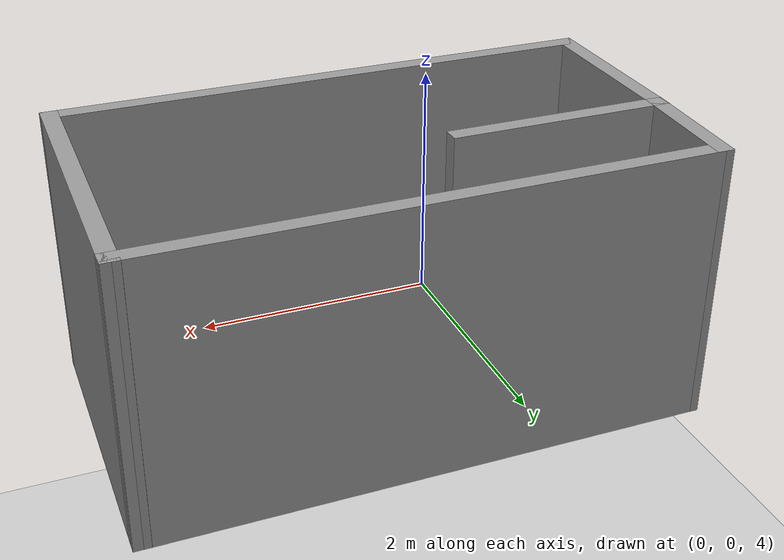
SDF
<sdf version="1.6">
 <world name="default">
  <light name="sun" type="directional">
   <pose>0 0 10 0 -0 0</pose>
   <diffuse>0.8 0.8 0.8 1</diffuse>
   <specular>0.2 0.2 0.2 1</specular>
   <attenuation>
    <range>1000</range>
    <constant>0.9</constant>
    <linear>0.01</linear>
    <quadratic>0.001</quadratic>
   </attenuation>
   <direction>-0.5 0.1 -0.9</direction>
  </light>
  <model name="ground_plane">
   <static>1</static>
   <link name="link">
    <collision name="collision">
     <geometry><plane><normal>0 0 1</normal><size>100 100</size></plane></geometry>
     <surface><friction><ode><mu>100</mu><mu2>50</mu2></ode></friction></surface>
    </collision>
    <visual name="visual">
     <cast_shadows>0</cast_shadows>
     <geometry><plane><normal>0 0 1</normal><size>100 100</size></plane></geometry>
     <material>
      <script><uri>file://media/materials/scripts/gazebo.material</uri><name>Gazebo/Grey</name></script>
     </material>
    </visual>
   </link>
  </model>
  <gravity>0 0 -9.8</gravity>
  <magnetic_field>6e-06 2.3e-05 -4.2e-05</magnetic_field>
  <atmosphere type="adiabatic"/>
  <physics name="default_physics" default="0" type="ode">
   <max_step_size>0.001</max_step_size>
   <real_time_factor>1</real_time_factor>
   <real_time_update_rate>1000</real_time_update_rate>
  </physics>
  <scene><ambient>0.4 0.4 0.4 1</ambient><background>0.7 0.7 0.7 1</background><shadows>1</shadows></scene>
  <spherical_coordinates>
   <surface_model>EARTH_WGS84</surface_model>
   <latitude_deg>0</latitude_deg>
   <longitude_deg>0</longitude_deg>
   <elevation>0</elevation>
   <heading_deg>0</heading_deg>
  </spherical_coordinates>
  <model name="closed_room1.world">
   <pose>0.515699 0.203467 3.15997 0 -0 0</pose>
   <link name="Wall_0">
    <collision name="Wall_0_Collision">
     <geometry><box><size>2 0.15 2.5</size></box></geometry>
     <pose>0 0 1.25 0 -0 0</pose>
    </collision>
    <visual name="Wall_0_Visual">
     <pose>0 0 1.25 0 -0 0</pose>
     <geometry><box><size>2 0.15 2.5</size></box></geometry>
     <material>
      <script><uri>file://media/materials/scripts/gazebo.material</uri><name>Gazebo/Grey</name></script>
      <ambient>1 1 1 1</ambient>
     </material>
     <meta><layer>0</layer></meta>
    </visual>
    <pose>-1.5191 0.299027 0 0 -0 3.14159</pose>
   </link>
   <link name="Wall_1">
    <collision name="Wall_1_Collision">
     <geometry><box><size>1.75 0.15 2.5</size></box></geometry>
     <pose>0 0 1.25 0 -0 0</pose>
    </collision>
    <visual name="Wall_1_Visual">
     <pose>0 0 1.25 0 -0 0</pose>
     <geometry><box><size>1.75 0.15 2.5</size></box></geometry>
     <material>
      <script><uri>file://media/materials/scripts/gazebo.material</uri><name>Gazebo/Grey</name></script>
      <ambient>1 1 1 1</ambient>
     </material>
     <meta><layer>0</layer></meta>
    </visual>
    <pose>-2.4441 -0.500973 0 0 -0 -1.5708</pose>
   </link>
   <link name="Wall_10">
    <collision name="Wall_10_Collision">
     <geometry><box><size>1.1508 0.15 2.5</size></box></geometry>
     <pose>0 0 1.25 0 -0 0</pose>
    </collision>
    <visual name="Wall_10_Visual">
     <pose>0 0 1.25 0 -0 0</pose>
     <geometry><box><size>1.1508 0.15 2.5</size></box></geometry>
     <material>
      <script><uri>file://media/materials/scripts/gazebo.material</uri><name>Gazebo/Grey</name></script>
      <ambient>1 1 1 1</ambient>
     </material>
     <meta><layer>0</layer></meta>
    </visual>
    <pose>-2.4241 0.799027 0 0 -0 -1.61078</pose>
   </link>
   <link name="Wall_11">
    <collision name="Wall_11_Collision">
     <geometry><box><size>0.15 0.15 2.5</size></box></geometry>
     <pose>0 0 1.25 0 -0 0</pose>
    </collision>
    <visual name="Wall_11_Visual">
     <pose>0 0 1.25 0 -0 0</pose>
     <geometry><box><size>0.15 0.15 2.5</size></box></geometry>
     <material>
      <script><uri>file://media/materials/scripts/gazebo.material</uri><name>Gazebo/Grey</name></script>
      <ambient>1 1 1 1</ambient>
     </material>
     <meta><layer>0</layer></meta>
    </visual>
    <pose>-2.4441 0.299027 0 0 -0 0</pose>
   </link>
   <link name="Wall_2">
    <collision name="Wall_2_Collision">
     <geometry><box><size>5 0.15 2.5</size></box></geometry>
     <pose>0 0 1.25 0 -0 0</pose>
    </collision>
    <visual name="Wall_2_Visual">
     <pose>0 0 1.25 0 -0 0</pose>
     <geometry><box><size>5 0.15 2.5</size></box></geometry>
     <material>
      <script><uri>file://media/materials/scripts/gazebo.material</uri><name>Gazebo/Grey</name></script>
      <ambient>1 1 1 1</ambient>
     </material>
     <meta><layer>0</layer></meta>
    </visual>
    <pose>-0.019102 -1.30097 0 0 -0 0</pose>
   </link>
   <link name="Wall_3">
    <collision name="Wall_3_Collision">
     <geometry><box><size>2.75 0.15 2.5</size></box></geometry>
     <pose>0 0 1.25 0 -0 0</pose>
    </collision>
    <visual name="Wall_3_Visual">
     <pose>0 0 1.25 0 -0 0</pose>
     <geometry><box><size>2.75 0.15 2.5</size></box></geometry>
     <material>
      <script><uri>file://media/materials/scripts/gazebo.material</uri><name>Gazebo/Grey</name></script>
      <ambient>1 1 1 1</ambient>
     </material>
     <meta><layer>0</layer></meta>
    </visual>
    <pose>2.4259 -0.000973 0 0 -0 1.55541</pose>
   </link>
   <link name="Wall_4">
    <collision name="Wall_4_Collision">
     <geometry><box><size>0.15 0.15 2.5</size></box></geometry>
     <pose>0 0 1.25 0 -0 0</pose>
    </collision>
    <visual name="Wall_4_Visual">
     <pose>0 0 1.25 0 -0 0</pose>
     <geometry><box><size>0.15 0.15 2.5</size></box></geometry>
     <material>
      <script><uri>file://media/materials/scripts/gazebo.material</uri><name>Gazebo/Grey</name></script>
      <ambient>1 1 1 1</ambient>
     </material>
     <meta><layer>0</layer></meta>
    </visual>
    <pose>2.4459 1.29903 0 0 -0 0</pose>
   </link>
   <link name="Wall_7">
    <collision name="Wall_7_Collision">
     <geometry><box><size>0.15 0.15 2.5</size></box></geometry>
     <pose>0 0 1.25 0 -0 0</pose>
    </collision>
    <visual name="Wall_7_Visual">
     <pose>0 0 1.25 0 -0 0</pose>
     <geometry><box><size>0.15 0.15 2.5</size></box></geometry>
     <material>
      <script><uri>file://media/materials/scripts/gazebo.material</uri><name>Gazebo/Grey</name></script>
      <ambient>1 1 1 1</ambient>
     </material>
     <meta><layer>0</layer></meta>
    </visual>
    <pose>2.4459 1.29903 0 0 -0 0</pose>
   </link>
   <link name="Wall_9">
    <collision name="Wall_9_Collision">
     <geometry><box><size>5 0.15 2.5</size></box></geometry>
     <pose>0 0 1.25 0 -0 0</pose>
    </collision>
    <visual name="Wall_9_Visual">
     <pose>0 0 1.25 0 -0 0</pose>
     <geometry><box><size>5 0.15 2.5</size></box></geometry>
     <material>
      <script><uri>file://media/materials/scripts/gazebo.material</uri><name>Gazebo/Grey</name></script>
      <ambient>1 1 1 1</ambient>
     </material>
     <meta><layer>0</layer></meta>
    </visual>
    <pose>0.020898 1.29903 0 0 -0 3.14159</pose>
   </link>
   <static>1</static>
  </model>
 </world>
</sdf>
